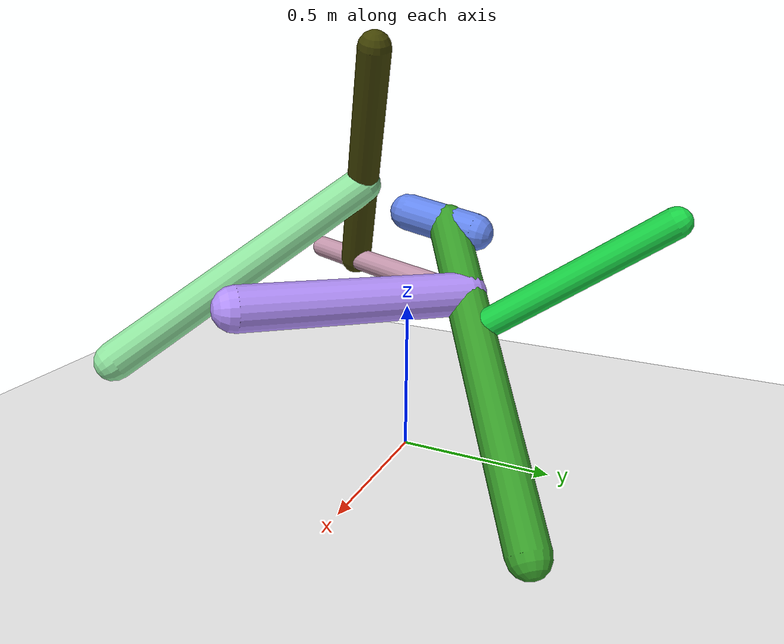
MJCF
<mujoco model="morphology">
  <option timestep="0.01"/>
  <default>
    <default class="/"/>
    <default class="0/"/>
    <default class="0/1/"/>
    <default class="0/1/2/"/>
    <default class="0/1/2/3/"/>
    <default class="0/1/2/3/4/"/>
    <default class="0/1/2/3/4/5/"/>
    <default class="0/1/6/"/>
  </default>
  <asset>
    <texture name="texplane" type="2d" builtin="checker" rgb1="0.10000000000000001 0.20000000000000001 0.29999999999999999" rgb2="0.20000000000000001 0.29999999999999999 0.40000000000000002" width="300" height="300"/>
    <material name="MatPlane" class="/" texture="texplane" texrepeat="20 20" specular="1" shininess="1" reflectance="0.5"/>
  </asset>
  <worldbody>
    <light name="//unnamed_light_0" class="/" directional="true" pos="0 0 1.5" dir="0 0 -1.3" cutoff="100" exponent="1" diffuse="1 1 1" specular="0.10000000000000001 0.10000000000000001 0.10000000000000001"/>
    <geom name="ground" class="/" type="plane" size="15 15 0.5" material="MatPlane" rgba="1 1 1 1"/>
    <site name="body" class="/" size="9.9999999999999995e-07 9.9999999999999995e-07 9.9999999999999995e-07" pos="0 0 0.81836608648300169"/>
    <body pos="0 0 0.81836608648300169" name="0/">
      <freejoint name="0/"/>
      <geom name="0/geom" class="0/" type="capsule" contype="1" conaffinity="1" condim="3" size="0.058792793387202516" rgba="0.38898844939692689 0.52647775783648543 0.92686428590515235 1" friction="0.59999999999999998 0.10000000000000001 0.10000000000000001" fromto="0 0 0 0.011953510098899556 0.22832030845068441 -0.04162833202167282"/>
      <site name="0/end0" class="0/" size="0.0050000000000000001" pos="0.011953510098899556 0.22832030845068441 -0.04162833202167282"/>
      <site name="0/attach1" class="0/" size="9.9999999999999995e-07 9.9999999999999995e-07 9.9999999999999995e-07" pos="0.0072949880865528574 0.13933931676011646 -0.025404938269063475"/>
      <body pos="0.0072949880865528574 0.13933931676011646 -0.025404938269063475" name="0/1/">
        <joint name="0/1/joint/" class="0/" type="hinge" axis="0 0 1" limited="true" range="-51.278291191068611 51.278291191068611"/>
        <geom name="0/1/geom" class="0/1/" type="capsule" contype="1" conaffinity="1" condim="3" size="0.062382780362101098" rgba="0.21629390654676384 0.61046954297445655 0.16146321173280798 1" friction="0.59999999999999998 0.10000000000000001 0.10000000000000001" fromto="0 0 0 0.58369149160743095 0.45391318411958625 -0.69296112563154444"/>
        <site name="0/1/end1" class="0/1/" size="0.0050000000000000001" pos="0.58369149160743095 0.45391318411958625 -0.69296112563154444"/>
        <site name="0/1/attach2" class="0/1/" size="9.9999999999999995e-07 9.9999999999999995e-07 9.9999999999999995e-07" pos="0.14572792688547614 0.11332669442476864 -0.17300884063327904"/>
        <body pos="0.14572792688547614 0.11332669442476864 -0.17300884063327904" name="0/1/2/">
          <joint name="0/1/2/joint/" class="0/1/" type="hinge" axis="5.5511151231257827e-17 0.83651415418674202 0.54794531647349609" limited="true" range="-40.263520702968961 40.263520702968961"/>
          <geom name="0/1/2/geom" class="0/1/2/" type="capsule" contype="1" conaffinity="1" condim="3" size="0.065743769474183256" rgba="0.7038342382147843 0.56944320370942458 0.98837107661597701 1" friction="0.59999999999999998 0.10000000000000001 0.10000000000000001" fromto="0 0 0 0.51565287637297375 -0.46604540586725257 0.036591947361030663"/>
          <site name="0/1/2/end2" class="0/1/2/" size="0.0050000000000000001" pos="0.51565287637297375 -0.46604540586725257 0.036591947361030663"/>
          <site name="0/1/2/attach3" class="0/1/2/" size="9.9999999999999995e-07 9.9999999999999995e-07 9.9999999999999995e-07" pos="0.011950479501257211 -0.010800804813979709 0.00084803428214135531"/>
          <body pos="0.011950479501257211 -0.010800804813979709 0.00084803428214135531" name="0/1/2/3/">
            <joint name="0/1/2/3/joint/" class="0/1/2/" type="hinge" axis="3.4694469519536142e-18 0.07827494028175612 0.99693180996690423" limited="true" range="-41.87961404359389 41.87961404359389"/>
            <geom name="0/1/2/3/geom" class="0/1/2/3/" type="capsule" contype="1" conaffinity="1" condim="3" size="0.038379186156690781" rgba="0.81054746389258026 0.6253899915047858 0.71343260477237003 1" friction="0.59999999999999998 0.10000000000000001 0.10000000000000001" fromto="0 0 0 -0.4504099302823053 -0.72041342460300228 -0.03145454291786498"/>
            <site name="0/1/2/3/end3" class="0/1/2/3/" size="0.0050000000000000001" pos="-0.4504099302823053 -0.72041342460300228 -0.03145454291786498"/>
            <site name="0/1/2/3/attach4" class="0/1/2/3/" size="9.9999999999999995e-07 9.9999999999999995e-07 9.9999999999999995e-07" pos="-0.31994156454343603 -0.51173427291248652 -0.022343236675161145"/>
            <body pos="-0.31994156454343603 -0.51173427291248652 -0.022343236675161145" name="0/1/2/3/4/">
              <joint name="0/1/2/3/4/joint/" class="0/1/2/3/" type="hinge" axis="0 -0.043620236552158922 0.99904818450519861" limited="true" range="-35.820502200533141 35.820502200533141"/>
              <geom name="0/1/2/3/4/geom" class="0/1/2/3/4/" type="capsule" contype="1" conaffinity="1" condim="3" size="0.052803919565307798" rgba="0.25842542430711601 0.26212906491860266 0.015433360695269127 1" friction="0.59999999999999998 0.10000000000000001 0.10000000000000001" fromto="0 0 0 0.27835079541173324 0.20586665018906447 0.73070200870698665"/>
              <site name="0/1/2/3/4/end4" class="0/1/2/3/4/" size="0.0050000000000000001" pos="0.27835079541173324 0.20586665018906447 0.73070200870698665"/>
              <site name="0/1/2/3/4/attach5" class="0/1/2/3/4/" size="9.9999999999999995e-07 9.9999999999999995e-07 9.9999999999999995e-07" pos="0.10966142279015456 0.081104958695671206 0.28787351511571924"/>
              <body pos="0.10966142279015456 0.081104958695671206 0.28787351511571924" name="0/1/2/3/4/5/">
                <joint name="0/1/2/3/4/5/joint/" class="0/1/2/3/4/" type="hinge" axis="-0.93887778235147956 0.093354231090432949 0.33135101832389469" limited="true" range="-57.599091629817288 57.599091629817288"/>
                <geom name="0/1/2/3/4/5/geom" class="0/1/2/3/4/5/" type="capsule" contype="1" conaffinity="1" condim="3" size="0.062368098770871384" rgba="0.55856135674075125 0.8847421631082556 0.61692231974835943 1" friction="0.59999999999999998 0.10000000000000001 0.10000000000000001" fromto="0 0 0 0.64472883815016191 -0.5396003950893431 -0.4947831638222695"/>
                <site name="0/1/2/3/4/5/end5" class="0/1/2/3/4/5/" size="0.0050000000000000001" pos="0.64472883815016191 -0.5396003950893431 -0.4947831638222695"/>
              </body>
            </body>
          </body>
        </body>
        <site name="0/1/attach6" class="0/1/" size="9.9999999999999995e-07 9.9999999999999995e-07 9.9999999999999995e-07" pos="0.21743178597010618 0.16908787556025906 -0.2581359799146396"/>
        <body pos="0.21743178597010618 0.16908787556025906 -0.2581359799146396" name="0/1/6/">
          <joint name="0/1/6/joint/" class="0/1/" type="hinge" axis="5.5511151231257827e-17 0.83651415418674202 0.54794531647349609" limited="true" range="-41.016533357773199 41.016533357773199"/>
          <geom name="0/1/6/geom" class="0/1/6/" type="capsule" contype="1" conaffinity="1" condim="3" size="0.043318209888277136" rgba="0.097143724072792925 0.82071278644262335 0.27106501734592003 1" friction="0.59999999999999998 0.10000000000000001 0.10000000000000001" fromto="0 0 0 -0.089032044305898506 0.51342083841404418 0.35237887376314725"/>
          <site name="0/1/6/end6" class="0/1/6/" size="0.0050000000000000001" pos="-0.089032044305898506 0.51342083841404418 0.35237887376314725"/>
        </body>
      </body>
      <camera name="0/iso" class="0/" mode="trackcom" pos="-2.2999999999999998 -2.2999999999999998 1" xyaxes="0.45000000000000001 -0.45000000000000001 0 0.29999999999999999 0.14999999999999999 0.93999999999999995"/>
    </body>
  </worldbody>
  <actuator>
    <motor name="0/1/motor" class="0/1/" ctrllimited="true" ctrlrange="-1 1" gear="86" joint="0/1/joint/"/>
    <motor name="0/1/2/motor" class="0/1/2/" ctrllimited="true" ctrlrange="-1 1" gear="54" joint="0/1/2/joint/"/>
    <motor name="0/1/2/3/motor" class="0/1/2/3/" ctrllimited="true" ctrlrange="-1 1" gear="87" joint="0/1/2/3/joint/"/>
    <motor name="0/1/2/3/4/motor" class="0/1/2/3/4/" ctrllimited="true" ctrlrange="-1 1" gear="91" joint="0/1/2/3/4/joint/"/>
    <motor name="0/1/2/3/4/5/motor" class="0/1/2/3/4/5/" ctrllimited="true" ctrlrange="-1 1" gear="90" joint="0/1/2/3/4/5/joint/"/>
    <motor name="0/1/6/motor" class="0/1/6/" ctrllimited="true" ctrlrange="-1 1" gear="61" joint="0/1/6/joint/"/>
  </actuator>
  <sensor>
    <subtreelinvel name="velocity" body="0/"/>
  </sensor>
</mujoco>
